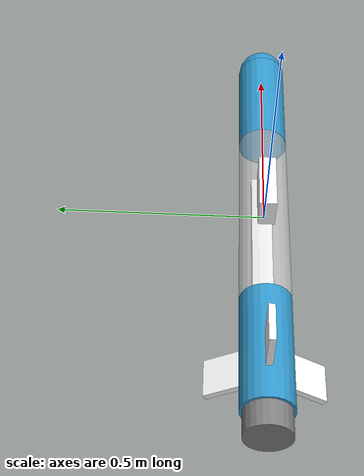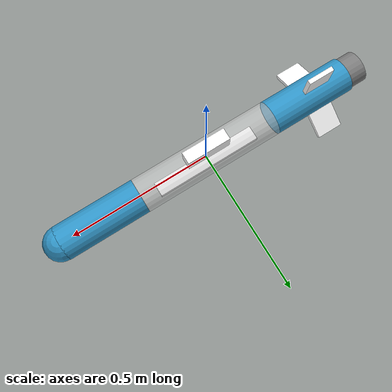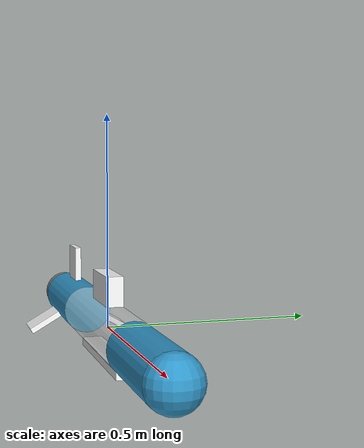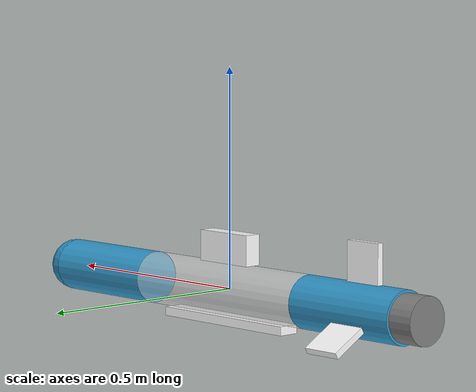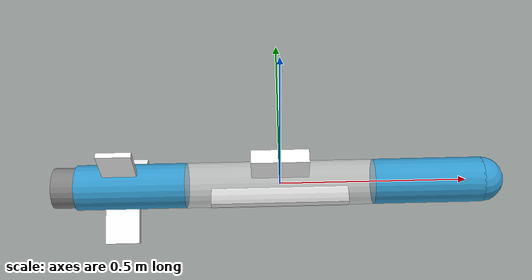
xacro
<?xml version="1.0" ?>
<robot name="couguv" xmlns:xacro="http://ros.org/wiki/xacro">

  <!--
  @file couguv_holoocean.urdf.xacro
  @brief URDF description for the CougUV AUV in HoloOcean.
  @author Nelson Durrant
  @date Jan 2026
  -->

  <xacro:property name="base_radius" value="0.06"/>
  <xacro:property name="base_length" value="1.2"/>
  <xacro:property name="enclosure_length" value="0.5"/>

  <xacro:property name="handle_height" value="0.07"/>
  <xacro:property name="handle_width" value="0.04"/>
  <xacro:property name="handle_length" value="0.15"/>

  <xacro:property name="tray_height" value="0.02"/>
  <xacro:property name="tray_width" value="0.05"/>
  <xacro:property name="tray_length" value="0.38"/>

  <!-- How far back the fins are from the middle -->
  <xacro:property name="fin_offset" value="0.375"/>
  <xacro:property name="fin_height" value="0.09"/>
  <xacro:property name="fin_width" value="0.015"/>
  <xacro:property name="fin_length" value="0.09"/>

  <material name="White"><color rgba="1 1 1 1"/></material>
  <material name="Blue"><color rgba="0.196 0.6 0.8 1"/></material>
  <material name="Gray"><color rgba="0.5 0.5 0.5 1"/></material>
  <material name="Acrylic"><color rgba="0.9 0.9 0.9 0.5"/></material>

  <!-- Helpful macros -->
  <xacro:macro name="add_box" params="name color xyz size">
    <joint name="${name}_joint" type="fixed">
      <parent link="base_link"/> <child link="${name}_link"/> <origin xyz="${xyz}"/>
    </joint>
    <link name="${name}_link">
      <visual>
        <geometry><box size="${size}"/></geometry>
        <material name="${color}"/>
      </visual>
    </link>
  </xacro:macro>

  <xacro:macro name="add_sphere" params="name color xyz radius">
    <joint name="${name}_joint" type="fixed">
      <parent link="base_link"/> <child link="${name}_link"/> <origin xyz="${xyz}"/>
    </joint>
    <link name="${name}_link">
      <visual>
        <geometry><sphere radius="${radius}"/></geometry>
        <material name="${color}"/>
      </visual>
    </link>
  </xacro:macro>

  <xacro:macro name="add_cylinder" params="name color xyz rpy radius length">
    <joint name="${name}_joint" type="fixed">
      <parent link="base_link"/> <child link="${name}_link"/> <origin xyz="${xyz}" rpy="${rpy}"/>
    </joint>
    <link name="${name}_link">
      <visual>
        <geometry><cylinder radius="${radius}" length="${length}"/></geometry>
        <material name="${color}"/>
      </visual>
    </link>
  </xacro:macro>

  <xacro:macro name="fin_macro" params="prefix rpy">
    <joint name="${prefix}_fin_joint" type="revolute">
      <parent link="base_link"/> <child link="${prefix}_fin_link"/>
      <origin xyz="${-fin_offset} 0 0" rpy="${rpy}"/>
      <axis xyz="0 0 1"/>
      <limit lower="${-pi/4}" upper="${pi/4}" effort="10.0" velocity="1.0"/>
    </joint>
    <link name="${prefix}_fin_link">
      <visual>
        <origin xyz="${-fin_length/2} 0 ${base_radius+fin_height/2}"/>
        <geometry><box size="${fin_length} ${fin_width} ${fin_height}"/></geometry>
        <material name="White"/>
      </visual>
    </link>
  </xacro:macro>

  <!-- Main AUV Body -->
  <link name="base_link"/>
  <xacro:add_cylinder name="clear_body" color="Acrylic"
    xyz="0 0 0" rpy="0 ${pi/2} 0"
    radius="${base_radius}" length="${enclosure_length}"/>

  <xacro:add_cylinder name="front_body" color="Blue"
    xyz="${(base_length - 2*base_radius - enclosure_length)/4 + enclosure_length/2} 0 0" rpy="0 ${pi/2} 0"
    radius="${base_radius}" length="${(base_length - 2*base_radius - enclosure_length)/2}"/>

  <xacro:add_cylinder name="back_body" color="Blue"
    xyz="${-((base_length - 2*base_radius - enclosure_length)/4 + enclosure_length/2)} 0 0" rpy="0 ${pi/2} 0"
    radius="${base_radius}" length="${(base_length - 2*base_radius - enclosure_length)/2}"/>

  <!-- Handle -->
  <xacro:add_box name="handle" color="White"
    xyz="0 0 ${base_radius + handle_height/2}"
    size="${handle_length} ${handle_width} ${handle_height}"/>

  <!-- Tray -->
  <xacro:add_box name="tray" color="White"
    xyz="0 0 ${-(base_radius + tray_height/2)}"
    size="${tray_length} ${tray_width} ${tray_height}"/>

  <!-- Hull -->
  <xacro:add_sphere name="hull" color="Blue"
    xyz="${(base_length-2*base_radius)/2} 0 0"
    radius="${base_radius}"/>

  <!-- Thruster -->
  <xacro:add_cylinder name="thruster" color="Gray"
    xyz="${-(base_length-2*base_radius)/2} 0 0" rpy="0 ${pi/2} 0"
    radius="${base_radius*0.9}" length="${2*base_radius}"/>

  <!-- Fins -->
  <xacro:fin_macro prefix="top"   rpy="0 0 0"/>
  <xacro:fin_macro prefix="left"  rpy="${pi*2/3} 0 0"/>
  <xacro:fin_macro prefix="right" rpy="${-pi*2/3} 0 0"/>

  <!-- NOTE: These are exact HoloOcean socket locations as of 2.0.1 -->

  <!-- COM -->
  <joint name="com_joint" type="fixed">
    <parent link="base_link"/>
    <child link="com_link"/>
    <origin xyz="0 0 0" rpy="0 0 0"/>
  </joint>
  <link name="com_link"/>

  <!-- IMUSocket -->
  <joint name="imu_joint" type="fixed">
    <parent link="com_link"/>
    <child link="imu_link"/>
    <origin xyz="0.475 0 -0.035" rpy="${pi} 0 0"/>
  </joint>
  <link name="imu_link"/>

  <!-- DepthSocket -->
  <joint name="depth_joint" type="fixed">
    <parent link="com_link"/>
    <child link="depth_link"/>
    <origin xyz="0.15 0 0.018" rpy="0 0 0"/>
  </joint>
  <link name="depth_link"/>

  <!-- AcousticModemSocket -->
  <joint name="modem_joint" type="fixed">
    <parent link="com_link"/>
    <child link="modem_link"/>
    <origin xyz="0.35 0 -0.086" rpy="0 0 0"/>
  </joint>
  <link name="modem_link"/>

  <!-- DVLSocket -->
  <joint name="dvl_joint" type="fixed">
    <parent link="com_link"/>
    <child link="dvl_link"/>
    <origin xyz="0.475 0 -0.035" rpy="${pi} 0 0"/>
  </joint>
  <link name="dvl_link"/>

  <!-- TODO: Check this when we move to a new HoloOcean version -->
  <joint name="truth_joint" type="fixed">
    <parent link="base_link"/>
    <child link="truth_link"/>
    <origin xyz="-0.1 0 -0.1" rpy="0 0 0"/>
  </joint>
  <link name="truth_link"/>

</robot>
